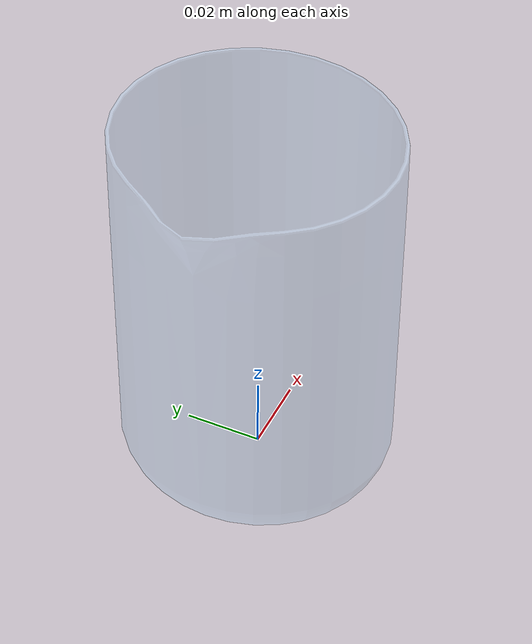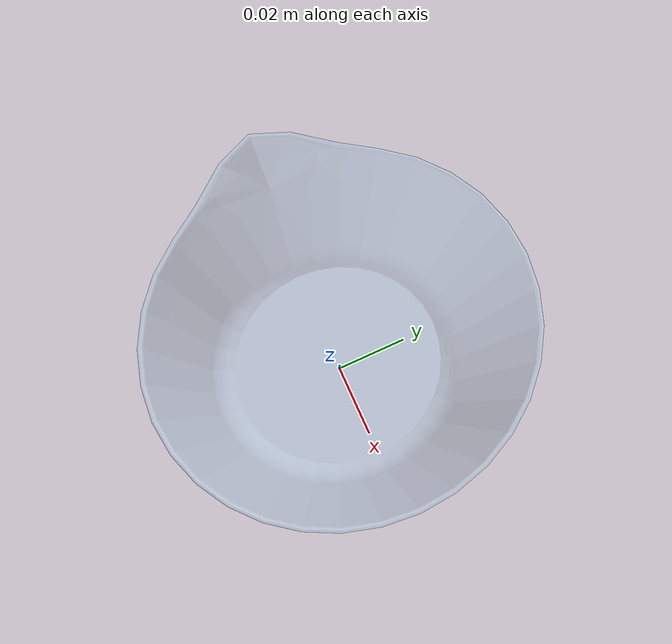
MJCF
<mujoco model="Beaker">

  <compiler angle="radian" meshdir="../../assets" />

  <option gravity="0 0 -9.81" />

  <asset>

    <mesh name="beaker_mesh" file="Beaker/base.obj" scale="1.950000 1.950000 2.100000" />
  </asset>

  <worldbody>

    <body name="beaker" quat="0.7071 0.7071 0 0" pos="0.217500 0.000000 -0.000000">

      <geom name="beaker_visual" type="mesh" mesh="beaker_mesh" rgba="0.65 0.85 1.0 0.3" contype="0" conaffinity="0" />

      <geom name="glass_sheet_collision_2" type="cylinder" size="0.032100 0.003000" pos="-0.219750 0.003675 -0.000000" euler="1.5708 0 0" contype="1" conaffinity="1" friction="0.6 0.2 0.001" density="2500" rgba="0 0 0 0" />
      <geom name="ring_1" type="box" size="0.015000 0.052500 0.001500" pos="-0.218250 0.054000 -0.033000" density="2500" contype="1" conaffinity="1" rgba="0 0 0 0" />
      <geom name="ring_2" type="box" size="0.015000 0.052500 0.001500" pos="-0.218250 0.054000 0.033000" density="2500" contype="1" conaffinity="1" rgba="0 0 0 0" />
      <geom name="ring_3" type="box" size="0.015000 0.052500 0.001500" pos="-0.187500 0.054000 -0.000000" density="2500" contype="1" conaffinity="1" euler="0 1.5708 0" rgba="0 0 0 0" />
      <geom name="ring_4" type="box" size="0.015000 0.052500 0.001500" density="2500" pos="-0.255000 0.054000 -0.000000" contype="1" conaffinity="1" euler="0 1.5708 0" rgba="0 0 0 0" />
      <geom name="ring_5" type="box" size="0.015000 0.052500 0.001500" pos="-0.245100 0.054000 -0.022950" density="2500" contype="1" conaffinity="1" euler="0 0.7854 0" rgba="0 0 0 0" />
      <geom name="ring_6" type="box" size="0.015000 0.052500 0.001500" pos="-0.196500 0.054000 0.022950" density="2500" contype="1" conaffinity="1" euler="0 0.7854 0" rgba="0 0 0 0" />
      <geom name="ring_7" type="box" size="0.015000 0.052500 0.001500" pos="-0.245100 0.054000 0.022950" density="2500" contype="1" conaffinity="1" euler="0 -0.7854 0" rgba="0 0 0 0" />
      <geom name="ring_8" type="box" size="0.015000 0.052500 0.001500" pos="-0.196500 0.054000 -0.022950" density="2500" contype="1" conaffinity="1" euler="0 -0.7854 0" rgba="0 0 0 0" />
    </body>
  </worldbody>
</mujoco>
